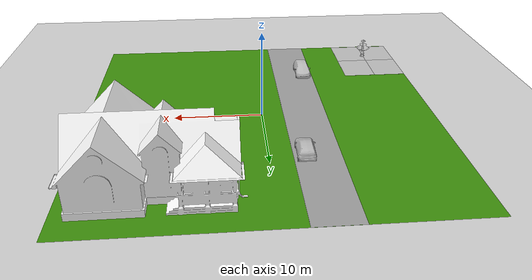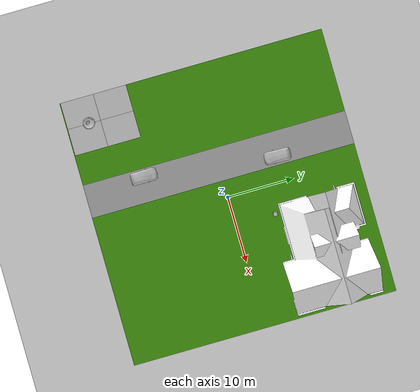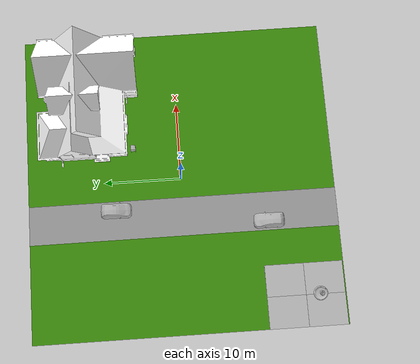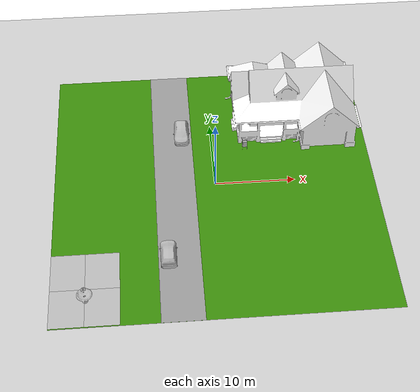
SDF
<sdf version="1.7">
 <world name="default">
  <light name="sun" type="directional">
   <pose>0 0 10 0 -0 0</pose>
   <diffuse>0.8 0.8 0.8 1</diffuse>
   <specular>0.2 0.2 0.2 1</specular>
   <attenuation>
    <range>1000</range>
    <constant>0.9</constant>
    <linear>0.01</linear>
    <quadratic>0.001</quadratic>
   </attenuation>
   <direction>-0.5 0.1 -0.9</direction>
   <spot><inner_angle>0</inner_angle><outer_angle>0</outer_angle><falloff>0</falloff></spot>
  </light>
  <model name="ground_plane">
   <static>1</static>
   <link name="link">
    <collision name="collision">
     <geometry><plane><normal>0 0 1</normal><size>100 100</size></plane></geometry>
     <surface><friction><ode><mu>100</mu><mu2>50</mu2></ode></friction></surface>
    </collision>
    <visual name="visual">
     <cast_shadows>0</cast_shadows>
     <geometry><plane><normal>0 0 1</normal><size>100 100</size></plane></geometry>
     <material>
      <script><uri>file://media/materials/scripts/gazebo.material</uri><name>Gazebo/Grey</name></script>
     </material>
    </visual>
   </link>
  </model>
  <gravity>0 0 -9.8</gravity>
  <magnetic_field>6e-06 2.3e-05 -4.2e-05</magnetic_field>
  <atmosphere type="adiabatic"/>
  <physics type="ode">
   <max_step_size>0.001</max_step_size>
   <real_time_factor>1</real_time_factor>
   <real_time_update_rate>1000</real_time_update_rate>
  </physics>
  <scene><ambient>0.4 0.4 0.4 1</ambient><background>0.7 0.7 0.7 1</background><shadows>1</shadows></scene>
  <audio><device>default</device></audio>
  <spherical_coordinates>
   <surface_model>EARTH_WGS84</surface_model>
   <latitude_deg>0</latitude_deg>
   <longitude_deg>0</longitude_deg>
   <elevation>0</elevation>
   <heading_deg>0</heading_deg>
  </spherical_coordinates>
  <model name="House 1">
   <static>1</static>
   <link name="link">
    <collision name="collision">
     <geometry><mesh><uri>model://house_1/meshes/house_1.dae</uri><scale>1.5 1.5 1.5</scale></mesh></geometry>
    </collision>
    <visual name="visual">
     <geometry><mesh><uri>model://house_1/meshes/house_1.dae</uri><scale>1.5 1.5 1.5</scale></mesh></geometry>
     <material>
      <script>
       <uri>model://house_1/materials/scripts</uri>
       <uri>model://house_1/materials/textures</uri>
       <name>House_1/Diffuse</name>
      </script>
      <shader type="normal_map_tangent_space"><normal_map>House_1_Normal.png</normal_map></shader>
     </material>
    </visual>
   </link>
   <pose>11.173 11.7672 0 0 -0 0</pose>
  </model>
  <model name="fountain">
   <static>1</static>
   <link name="link">
    <collision name="collision">
     <geometry><mesh><uri>model://fountain/meshes/fountain.dae</uri></mesh></geometry>
    </collision>
    <visual name="visual">
     <geometry><mesh><uri>model://fountain/meshes/fountain.dae</uri></mesh></geometry>
    </visual>
   </link>
   <pose>-15.899 -16.4666 0 0 -0 0</pose>
  </model>
  <model name="postbox">
   <static>1</static>
   <link name="link">
    <collision name="collision">
     <geometry><mesh><uri>model://postbox/meshes/postbox.dae</uri></mesh></geometry>
    </collision>
    <visual name="visual"><geometry><mesh><uri>model://postbox/meshes/postbox.dae</uri></mesh></geometry></visual>
   </link>
   <pose>4.27352 5.99699 0 0 -0 0</pose>
  </model>
  <model name="mud_box">
   <static>1</static>
   <link name="link">
    <collision name="collision"><geometry><box><size>8 10 0.2</size></box></geometry></collision>
    <visual name="visual_1">
     <pose>-2 2.5 0 0 -0 0</pose>
     <cast_shadows>0</cast_shadows>
     <geometry><box><size>4 5 0.2</size></box></geometry>
     <material>
      <script>
       <uri>model://mud_box/materials/scripts</uri>
       <uri>model://mud_box/materials/textures</uri>
       <name>vrc/mud</name>
      </script>
     </material>
    </visual>
    <visual name="visual_2">
     <pose>2 2.5 0 0 -0 0</pose>
     <cast_shadows>0</cast_shadows>
     <geometry><box><size>4 5 0.2</size></box></geometry>
     <material>
      <script>
       <uri>model://mud_box/materials/scripts</uri>
       <uri>model://mud_box/materials/textures</uri>
       <name>vrc/mud</name>
      </script>
     </material>
    </visual>
    <visual name="visual_3">
     <pose>2 -2.5 0 0 -0 0</pose>
     <cast_shadows>0</cast_shadows>
     <geometry><box><size>4 5 0.2</size></box></geometry>
     <material>
      <script>
       <uri>model://mud_box/materials/scripts</uri>
       <uri>model://mud_box/materials/textures</uri>
       <name>vrc/mud</name>
      </script>
     </material>
    </visual>
    <visual name="visual_4">
     <pose>-2 -2.5 0 0 -0 0</pose>
     <cast_shadows>0</cast_shadows>
     <geometry><box><size>4 5 0.2</size></box></geometry>
     <material>
      <script>
       <uri>model://mud_box/materials/scripts</uri>
       <uri>model://mud_box/materials/textures</uri>
       <name>vrc/mud</name>
      </script>
     </material>
    </visual>
   </link>
   <pose>-16.0018 -14.8811 -0.09 0 -0 0</pose>
  </model>
  <model name="hatchback_blue">
   <static>1</static>
   <link name="link">
    <collision name="collision">
     <pose>0 0 0 0 -0 1.5708</pose>
     <geometry>
      <mesh><scale>0.0254 0.0254 0.0254</scale><uri>model://hatchback_blue/meshes/hatchback.obj</uri></mesh>
     </geometry>
    </collision>
    <visual name="visual">
     <pose>0 0 0 0 -0 1.5708</pose>
     <geometry>
      <mesh><scale>0.0254 0.0254 0.0254</scale><uri>model://hatchback_blue/meshes/hatchback.obj</uri></mesh>
     </geometry>
    </visual>
   </link>
   <pose>-3.76644 8.95393 0 0 0 -1.59464</pose>
  </model>
  <model name="rover_plane">
   <link name="link">
    <inertial>
     <mass>1</mass>
     <inertia>
      <ixx>0.166667</ixx>
      <ixy>0</ixy>
      <ixz>0</ixz>
      <iyy>0.166667</iyy>
      <iyz>0</iyz>
      <izz>0.166667</izz>
     </inertia>
    </inertial>
    <visual name="visual">
     <geometry><box><size>40 40 0.002</size></box></geometry>
     <material>
      <script><name>Gazebo/Grey</name><uri>file://media/materials/scripts/gazebo.material</uri></script>
      <shader type="pixel"><normal_map>__default__</normal_map></shader>
      <ambient>0.231 0.545 0.039 1</ambient>
      <diffuse>0.231 0.545 0.039 1</diffuse>
      <specular>0.01 0.01 0.01 1</specular>
      <emissive>0 0 0 1</emissive>
     </material>
    </visual>
    <collision name="collision">
     <geometry><box><size>40 40 0.002</size></box></geometry>
     <surface>
      <friction>
       <ode><mu>1</mu><mu2>1</mu2><fdir1>0 0 0</fdir1><slip1>0</slip1><slip2>0</slip2></ode>
       <torsional>
        <coefficient>1</coefficient>
        <patch_radius>0</patch_radius>
        <surface_radius>0</surface_radius>
        <use_patch_radius>1</use_patch_radius>
        <ode><slip>0</slip></ode>
       </torsional>
      </friction>
      <bounce><restitution_coefficient>0</restitution_coefficient><threshold>1e+06</threshold></bounce>
      <contact>
       <collide_without_contact>0</collide_without_contact>
       <collide_without_contact_bitmask>1</collide_without_contact_bitmask>
       <collide_bitmask>1</collide_bitmask>
       <ode>
        <soft_cfm>0</soft_cfm>
        <soft_erp>0.2</soft_erp>
        <kp>1e+13</kp>
        <kd>1</kd>
        <max_vel>0.01</max_vel>
        <min_depth>0</min_depth>
       </ode>
       <bullet>
        <split_impulse>1</split_impulse>
        <split_impulse_penetration_threshold>-0.01</split_impulse_penetration_threshold>
        <soft_cfm>0</soft_cfm>
        <soft_erp>0.2</soft_erp>
        <kp>1e+13</kp>
        <kd>1</kd>
       </bullet>
      </contact>
     </surface>
    </collision>
   </link>
   <static>1</static>
   <pose>0 0 0.001 0 -0 0</pose>
  </model>
  <model name="hatchback">
   <static>1</static>
   <link name="link">
    <collision name="collision">
     <pose>0 0 0 0 -0 1.5708</pose>
     <geometry>
      <mesh><scale>0.0254 0.0254 0.0254</scale><uri>model://hatchback/meshes/hatchback.obj</uri></mesh>
     </geometry>
    </collision>
    <visual name="visual">
     <pose>0 0 0 0 -0 1.5708</pose>
     <geometry>
      <mesh><scale>0.0254 0.0254 0.0254</scale><uri>model://hatchback/meshes/hatchback.obj</uri></mesh>
     </geometry>
    </visual>
   </link>
   <pose>-6.28188 -11.3052 0 0 -0 1.5714</pose>
  </model>
  <model name="rover_road">
   <link name="link">
    <inertial>
     <mass>1</mass>
     <inertia>
      <ixx>0.166667</ixx>
      <ixy>0</ixy>
      <ixz>0</ixz>
      <iyy>0.166667</iyy>
      <iyz>0</iyz>
      <izz>0.166667</izz>
     </inertia>
    </inertial>
    <visual name="visual">
     <geometry><box><size>5 40 0.002</size></box></geometry>
     <material>
      <script><name>Gazebo/Grey</name><uri>file://media/materials/scripts/gazebo.material</uri></script>
      <shader type="pixel"><normal_map>__default__</normal_map></shader>
      <ambient>0.604 0.6 0.588 1</ambient>
      <diffuse>0.604 0.6 0.588 1</diffuse>
      <specular>0.01 0.01 0.01 1</specular>
      <emissive>0 0 0 1</emissive>
     </material>
    </visual>
    <collision name="collision">
     <geometry><box><size>5 40 0.002</size></box></geometry>
     <surface>
      <friction>
       <ode><mu>1</mu><mu2>1</mu2><fdir1>0 0 0</fdir1><slip1>0</slip1><slip2>0</slip2></ode>
       <torsional>
        <coefficient>1</coefficient>
        <patch_radius>0</patch_radius>
        <surface_radius>0</surface_radius>
        <use_patch_radius>1</use_patch_radius>
        <ode><slip>0</slip></ode>
       </torsional>
      </friction>
      <bounce><restitution_coefficient>0</restitution_coefficient><threshold>1e+06</threshold></bounce>
      <contact>
       <collide_without_contact>0</collide_without_contact>
       <collide_without_contact_bitmask>1</collide_without_contact_bitmask>
       <collide_bitmask>1</collide_bitmask>
       <ode>
        <soft_cfm>0</soft_cfm>
        <soft_erp>0.2</soft_erp>
        <kp>1e+13</kp>
        <kd>1</kd>
        <max_vel>0.01</max_vel>
        <min_depth>0</min_depth>
       </ode>
       <bullet>
        <split_impulse>1</split_impulse>
        <split_impulse_penetration_threshold>-0.01</split_impulse_penetration_threshold>
        <soft_cfm>0</soft_cfm>
        <soft_erp>0.2</soft_erp>
        <kp>1e+13</kp>
        <kd>1</kd>
       </bullet>
      </contact>
     </surface>
    </collision>
   </link>
   <static>1</static>
   <pose>-5 0 0.02 0 -0 0</pose>
  </model>
 </world>
</sdf>
